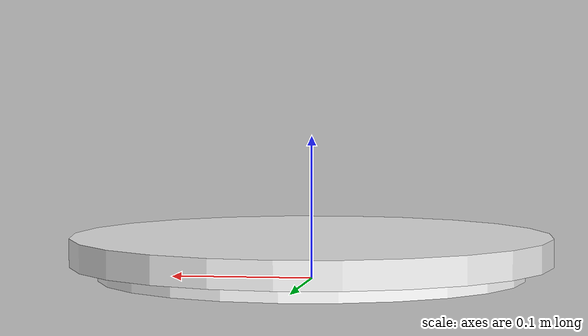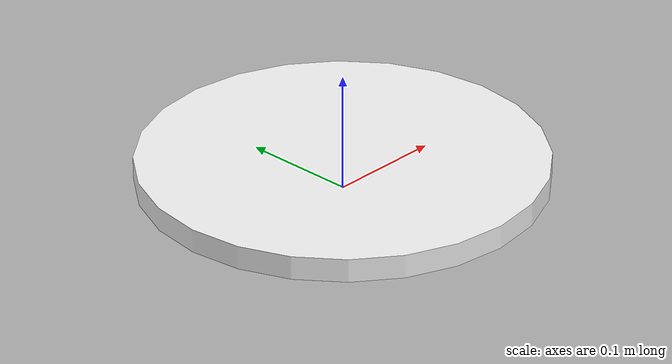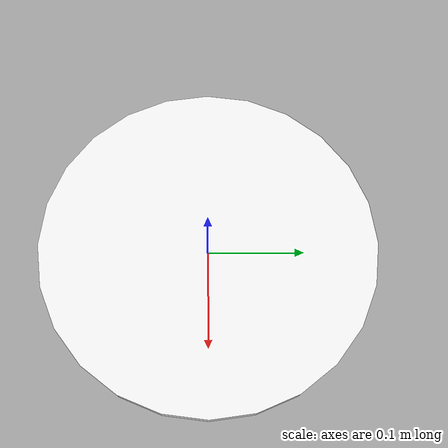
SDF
<?xml version="1.0" ?>
<sdf version="1.7">
  <model name="plate">
    <static>false</static>
    <link name="link">

      <inertial>
        <mass>0.30</mass>
        <inertia>
          <!-- Approximate as thin disk: ixx=iyy=(1/4)*m*r², izz=(1/2)*m*r² -->
          <ixx>0.001913</ixx>
          <iyy>0.001913</iyy>
          <izz>0.003825</izz>
        </inertia>
      </inertial>

      <!-- Base disc ───────────────────────────────────── -->
      <collision name="base_collision">
        <pose>0 0 0.01 0 0 0</pose>
        <geometry>
          <cylinder><radius>0.15</radius><length>0.02</length></cylinder>
        </geometry>
        <surface><friction><ode><mu>0.8</mu><mu2>0.8</mu2></ode></friction></surface>
      </collision>
      <visual name="base_visual">
        <pose>0 0 0.01 0 0 0</pose>
        <geometry>
          <cylinder><radius>0.15</radius><length>0.02</length></cylinder>
        </geometry>
        <material>
          <ambient>0.95 0.95 0.95 1</ambient>
          <diffuse>1.00 1.00 1.00 1</diffuse>
        </material>
      </visual>

      <!-- Rim ring ─────────────────────────────────────── -->
      <collision name="rim_collision">
        <pose>0 0 0.02 0 0 0</pose>
        <geometry>
          <cylinder><radius>0.17</radius><length>0.02</length></cylinder>
        </geometry>
      </collision>
      <visual name="rim_visual">
        <pose>0 0 0.02 0 0 0</pose>
        <geometry>
          <cylinder><radius>0.17</radius><length>0.02</length></cylinder>
        </geometry>
        <material>
          <ambient>0.90 0.90 0.90 1</ambient>
          <diffuse>0.95 0.95 0.95 1</diffuse>
        </material>
      </visual>

    </link>
  </model>
</sdf>
